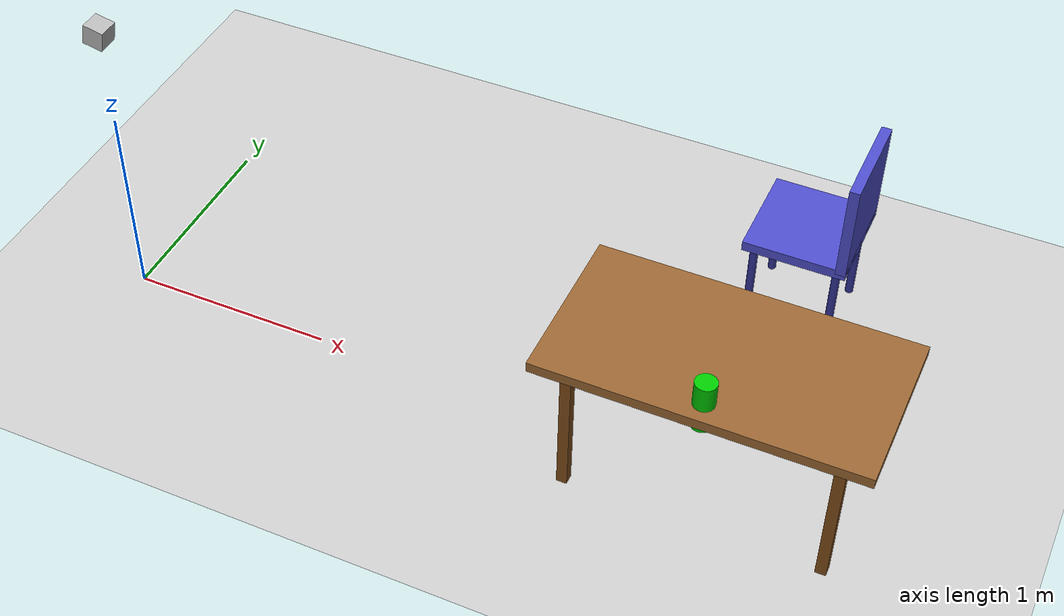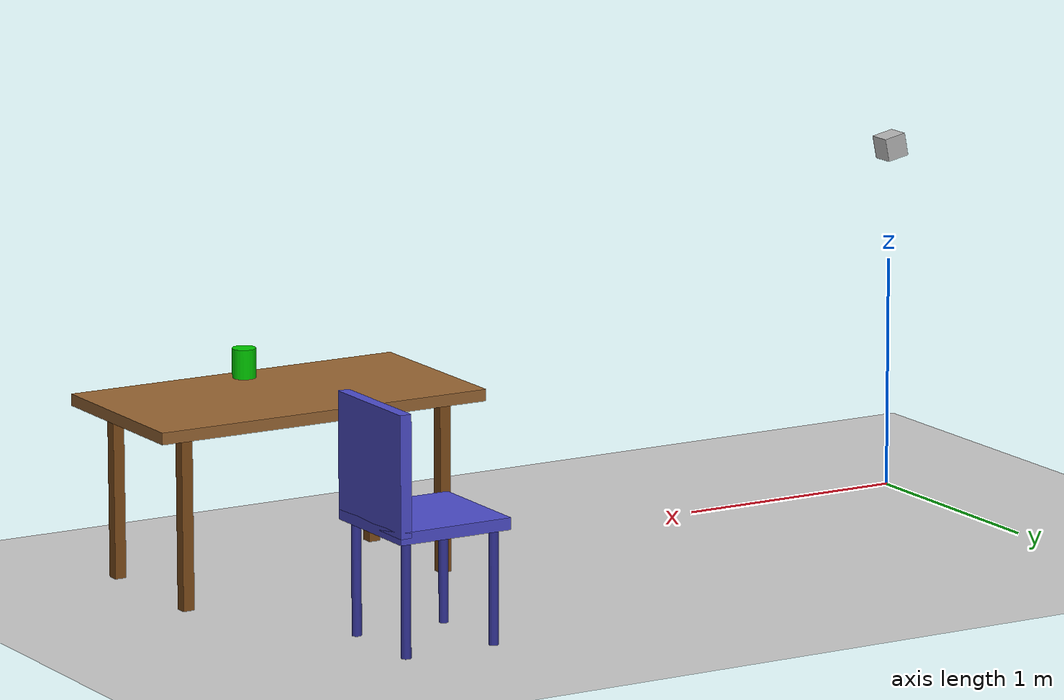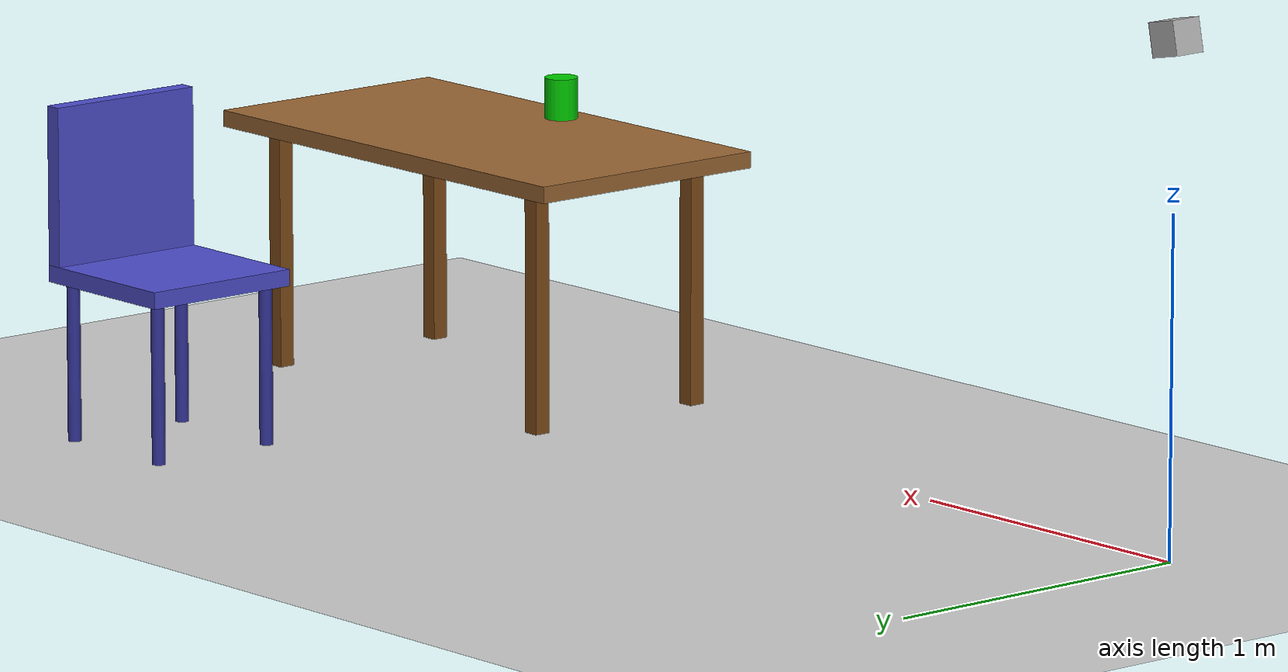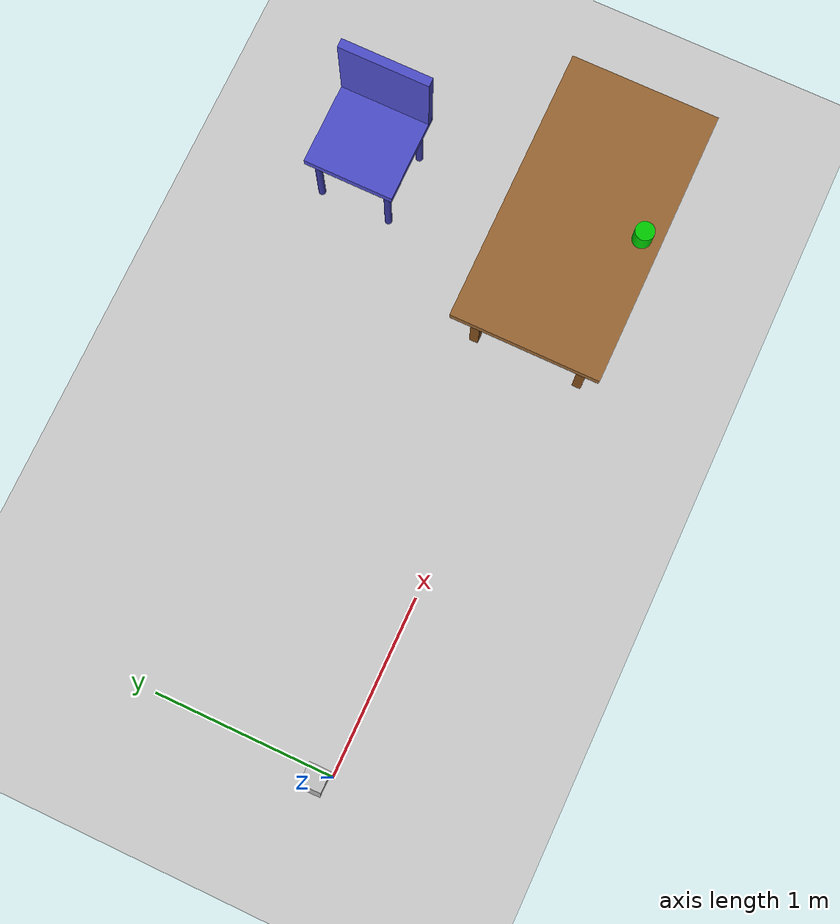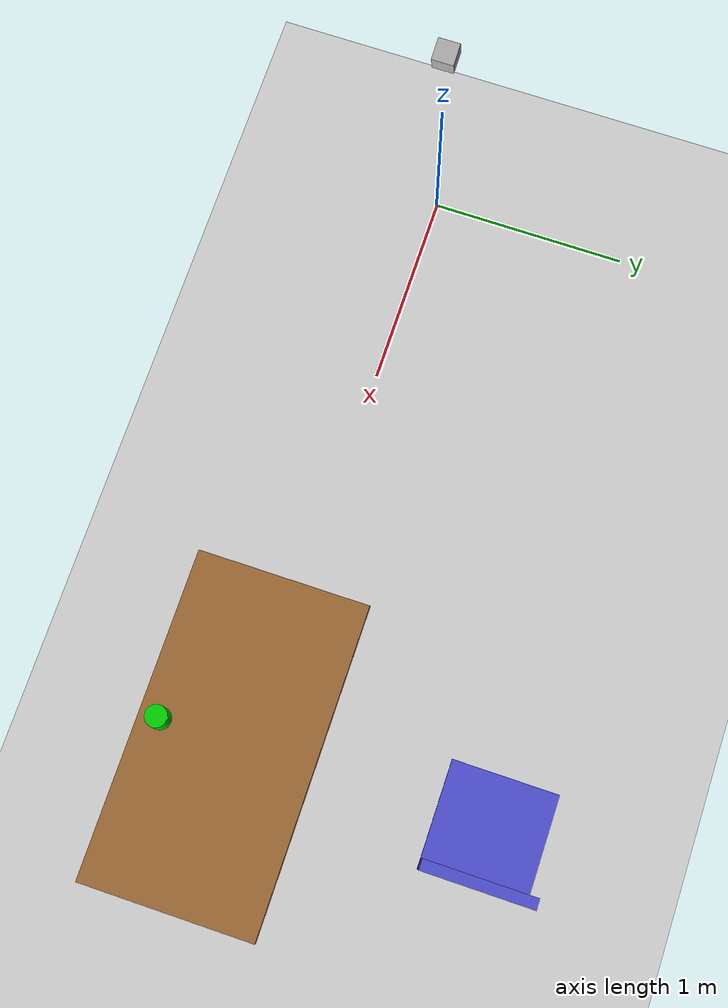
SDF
<?xml version="1.0" ?>
<sdf version="1.9">
  <world name="yolo_world">

    <physics name="1ms" type="ignored">
      <max_step_size>0.001</max_step_size>
      <real_time_factor>1.0</real_time_factor>
    </physics>

    <plugin filename="gz-sim-physics-system" name="gz::sim::systems::Physics"></plugin>
    <plugin filename="gz-sim-user-commands-system" name="gz::sim::systems::UserCommands"></plugin>
    <plugin filename="gz-sim-scene-broadcaster-system" name="gz::sim::systems::SceneBroadcaster"></plugin>
    <plugin filename="gz-sim-sensors-system" name="gz::sim::systems::Sensors">
      <render_engine>ogre2</render_engine>
    </plugin>

    <light type="directional" name="sun">
      <cast_shadows>true</cast_shadows>
      <pose>0 0 10 0 0 0</pose>
      <diffuse>0.8 0.8 0.8 1</diffuse>
      <specular>0.2 0.2 0.2 1</specular>
      <direction>-0.5 0.1 -0.9</direction>
    </light>

    <model name="ground_plane">
      <static>true</static>
      <link name="link">
        <collision name="collision">
          <geometry>
            <plane>
              <normal>0 0 1</normal>
            </plane>
          </geometry>
        </collision>
        <visual name="visual">
          <geometry>
            <plane>
              <normal>0 0 1</normal>
              <size>100 100</size>
            </plane>
          </geometry>
          <material>
            <ambient>0.8 0.8 0.8 1</ambient>
            <diffuse>0.8 0.8 0.8 1</diffuse>
          </material>
        </visual>
      </link>
    </model>

    <!-- Cámara -->
    <model name="camera">
      <pose>0 0 1.5 0 0.2 0</pose>
      <static>true</static>
      <link name="link">
        <visual name="visual">
          <geometry>
            <box>
              <size>0.1 0.1 0.1</size>
            </box>
          </geometry>
        </visual>
        <sensor name="camera" type="camera">
          <camera>
            <horizontal_fov>1.047</horizontal_fov>
            <image>
              <width>640</width>
              <height>480</height>
            </image>
            <clip>
              <near>0.1</near>
              <far>100</far>
            </clip>
          </camera>
          <always_on>1</always_on>
          <update_rate>30</update_rate>
          <visualize>true</visualize>
          <topic>camera/image_raw</topic>
        </sensor>
      </link>
    </model>

    <!-- Mesa (puede detectarse como dining table) -->
    <model name="table">
      <pose>3 0 0 0 0 0</pose>
      <static>true</static>
      <link name="link">
        <!-- Superficie de la mesa -->
        <visual name="top">
          <pose>0 0 0.75 0 0 0</pose>
          <geometry>
            <box>
              <size>1.5 0.8 0.05</size>
            </box>
          </geometry>
          <material>
            <ambient>0.6 0.4 0.2 1</ambient>
            <diffuse>0.6 0.4 0.2 1</diffuse>
          </material>
        </visual>
        <!-- Patas -->
        <visual name="leg1">
          <pose>0.6 0.3 0.375 0 0 0</pose>
          <geometry>
            <box>
              <size>0.05 0.05 0.75</size>
            </box>
          </geometry>
          <material>
            <ambient>0.5 0.3 0.1 1</ambient>
            <diffuse>0.5 0.3 0.1 1</diffuse>
          </material>
        </visual>
        <visual name="leg2">
          <pose>-0.6 0.3 0.375 0 0 0</pose>
          <geometry>
            <box>
              <size>0.05 0.05 0.75</size>
            </box>
          </geometry>
          <material>
            <ambient>0.5 0.3 0.1 1</ambient>
            <diffuse>0.5 0.3 0.1 1</diffuse>
          </material>
        </visual>
        <visual name="leg3">
          <pose>0.6 -0.3 0.375 0 0 0</pose>
          <geometry>
            <box>
              <size>0.05 0.05 0.75</size>
            </box>
          </geometry>
          <material>
            <ambient>0.5 0.3 0.1 1</ambient>
            <diffuse>0.5 0.3 0.1 1</diffuse>
          </material>
        </visual>
        <visual name="leg4">
          <pose>-0.6 -0.3 0.375 0 0 0</pose>
          <geometry>
            <box>
              <size>0.05 0.05 0.75</size>
            </box>
          </geometry>
          <material>
            <ambient>0.5 0.3 0.1 1</ambient>
            <diffuse>0.5 0.3 0.1 1</diffuse>
          </material>
        </visual>
        <collision name="collision">
          <pose>0 0 0.375 0 0 0</pose>
          <geometry>
            <box>
              <size>1.5 0.8 0.75</size>
            </box>
          </geometry>
        </collision>
      </link>
    </model>

    <!-- Silla (puede detectarse como chair) -->
    <model name="chair">
      <pose>3 1.2 0 0 0 3.14</pose>
      <static>true</static>
      <link name="link">
        <!-- Asiento -->
        <visual name="seat">
          <pose>0 0 0.5 0 0 0</pose>
          <geometry>
            <box>
              <size>0.5 0.5 0.05</size>
            </box>
          </geometry>
          <material>
            <ambient>0.3 0.3 0.8 1</ambient>
            <diffuse>0.3 0.3 0.8 1</diffuse>
          </material>
        </visual>
        <!-- Respaldo -->
        <visual name="back">
          <pose>-0.225 0 0.75 0 0 0</pose>
          <geometry>
            <box>
              <size>0.05 0.5 0.5</size>
            </box>
          </geometry>
          <material>
            <ambient>0.3 0.3 0.8 1</ambient>
            <diffuse>0.3 0.3 0.8 1</diffuse>
          </material>
        </visual>
        <!-- Patas -->
        <visual name="leg1">
          <pose>0.2 0.2 0.25 0 0 0</pose>
          <geometry>
            <cylinder>
              <radius>0.02</radius>
              <length>0.5</length>
            </cylinder>
          </geometry>
          <material>
            <ambient>0.2 0.2 0.6 1</ambient>
            <diffuse>0.2 0.2 0.6 1</diffuse>
          </material>
        </visual>
        <visual name="leg2">
          <pose>-0.2 0.2 0.25 0 0 0</pose>
          <geometry>
            <cylinder>
              <radius>0.02</radius>
              <length>0.5</length>
            </cylinder>
          </geometry>
          <material>
            <ambient>0.2 0.2 0.6 1</ambient>
            <diffuse>0.2 0.2 0.6 1</diffuse>
          </material>
        </visual>
        <visual name="leg3">
          <pose>0.2 -0.2 0.25 0 0 0</pose>
          <geometry>
            <cylinder>
              <radius>0.02</radius>
              <length>0.5</length>
            </cylinder>
          </geometry>
          <material>
            <ambient>0.2 0.2 0.6 1</ambient>
            <diffuse>0.2 0.2 0.6 1</diffuse>
          </material>
        </visual>
        <visual name="leg4">
          <pose>-0.2 -0.2 0.25 0 0 0</pose>
          <geometry>
            <cylinder>
              <radius>0.02</radius>
              <length>0.5</length>
            </cylinder>
          </geometry>
          <material>
            <ambient>0.2 0.2 0.6 1</ambient>
            <diffuse>0.2 0.2 0.6 1</diffuse>
          </material>
        </visual>
      </link>
    </model>

    <!-- Botella (puede detectarse como bottle) -->
    <model name="bottle">
      <pose>3 -0.3 0.775 0 0 0</pose>
      <static>true</static>
      <link name="link">
        <visual name="visual">
          <geometry>
            <cylinder>
              <radius>0.05</radius>
              <length>0.25</length>
            </cylinder>
          </geometry>
          <material>
            <ambient>0 0.8 0 1</ambient>
            <diffuse>0 0.8 0 1</diffuse>
          </material>
        </visual>
      </link>
    </model>

  </world>
</sdf>
